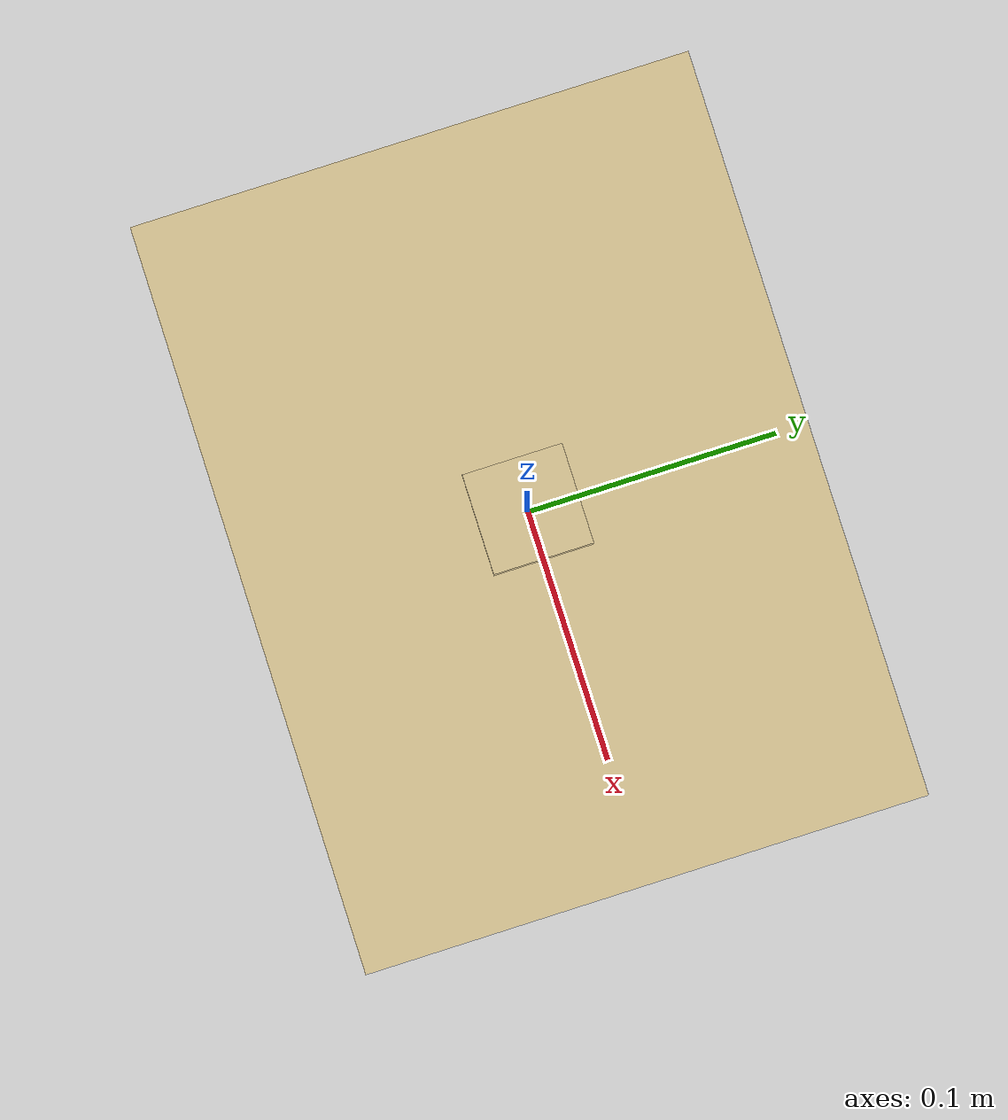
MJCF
<?xml version="1.0" encoding="utf-8"?>
<mujoco>
    <asset>
        <material name="wood_mat" rgba="0.88 0.8 0.6 1.0" specular="0.25" shininess="0.10" reflectance="0.10"></material>
    </asset>
    <worldbody>
        <body name="plane">
            <geom
                type="box" name="plane0" size="0.15 0.1125 0.0075"
                material="wood_mat">
            </geom>
            <geom
                type="box" name="plane1" size="0.02 0.02 0.0075" pos="0 0 0.0075"
                material="wood_mat">
            </geom>
            <joint type="free"></joint>
        </body>
    </worldbody>
</mujoco>
